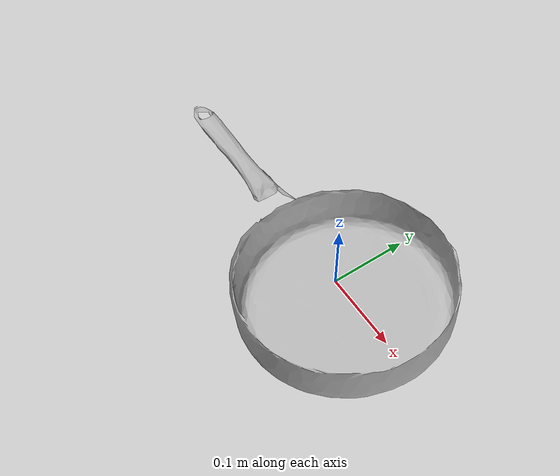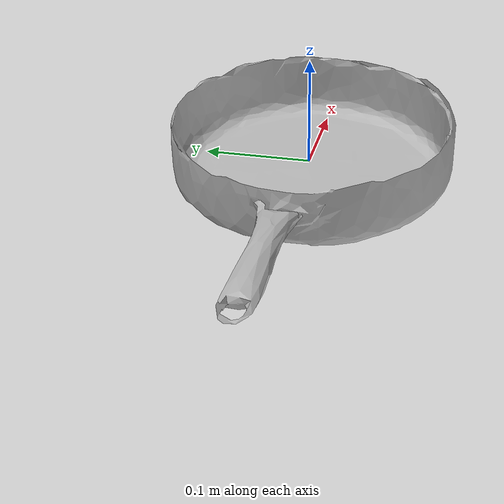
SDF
<?xml version='1.0'?>
<sdf version='1.6'>
    <model name='b_frying_pan'>
        <static>false</static>
        <pose>0 0 0 0 0 0</pose>

        <link name='link'>
            <inertial>
                <mass>1</mass>
                <pose>0.002625 0.0 0.01465 0 0 0</pose>
                <inertia>
                    <ixx>0.007971675</ixx>
                    <iyy>0.008713309</iyy>
                    <izz>0.016311566</izz>
                    <ixy>-1.69694542e-019</ixy>
                    <ixz>-0.000025788</ixz>
                    <iyz>-6.28650663e-021</iyz>
                </inertia>
            </inertial>t

            <collision name='collision'>
                <geometry>
                    <mesh>
                        <uri>model://b_frying_pan/b_frying_pan.dae</uri>
                    </mesh>
                </geometry>
                <surface>
                    <friction>
                        <ode>
                            <mu>0.2</mu>
                            <mu2>0.2</mu2>
                        </ode>
                    </friction>
                </surface>
            </collision>
            <visual name='visual'>
                <geometry>
                    <mesh>
                        <uri>model://b_frying_pan/b_frying_pan.dae</uri>
                    </mesh>
                </geometry>
            </visual>
        </link>
    </model>
</sdf>
